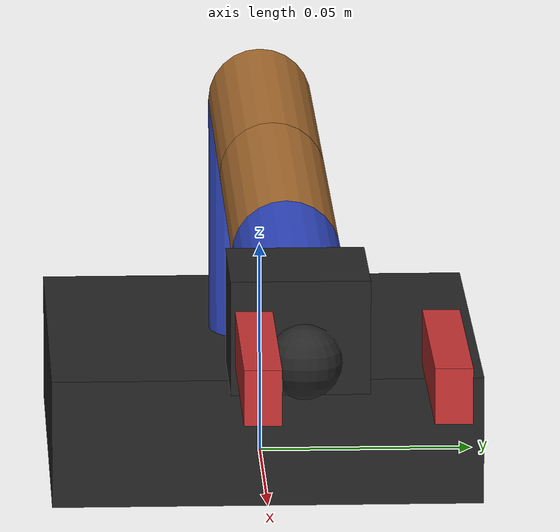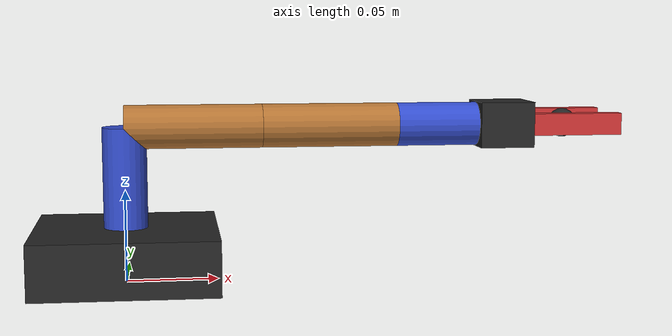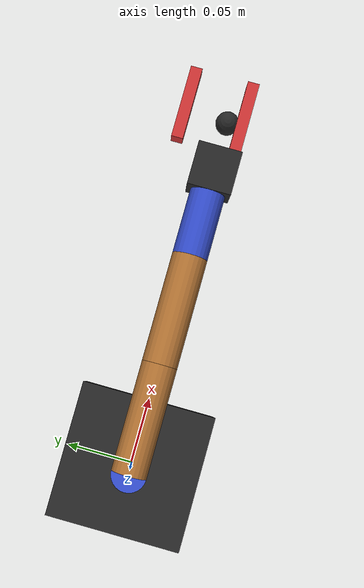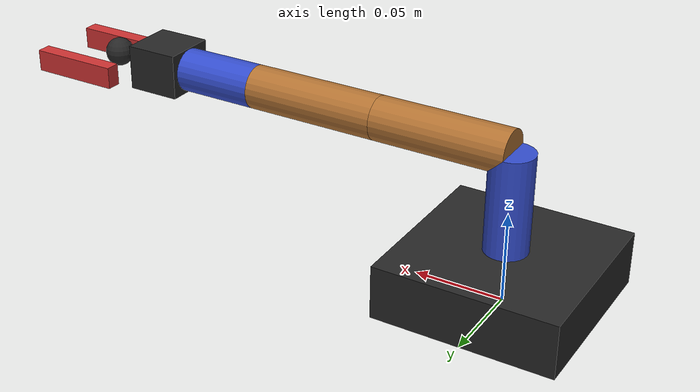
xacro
<?xml version="1.0"?>
<robot xmlns:xacro="http://ros.org/wiki/xacro" name="my_arm">

  <xacro:arg name="ros2_control_params" default=""/>
  <xacro:arg name="hardware_plugin" default="fake_components/GenericSystem"/>
  <xacro:arg name="use_gazebo_plugin" default="false"/>

  <!-- Approximate SG90 wooden arm dimensions -->
  <xacro:arg name="base_z" default="0.030"/>
  <xacro:arg name="base_x" default="0.100"/>
  <xacro:arg name="base_y" default="0.100"/>

  <xacro:arg name="L1" default="0.055"/>  <!-- base to shoulder height -->
  <xacro:arg name="L2" default="0.075"/>  <!-- upper arm -->
  <xacro:arg name="L3" default="0.075"/>  <!-- forearm -->
  <xacro:arg name="L4" default="0.045"/>  <!-- wrist / gripper support -->
  <xacro:arg name="tool_x" default="0.050"/>

  <xacro:arg name="r_link" default="0.012"/>

  <xacro:property name="L1" value="$(arg L1)"/>
  <xacro:property name="L2" value="$(arg L2)"/>
  <xacro:property name="L3" value="$(arg L3)"/>
  <xacro:property name="L4" value="$(arg L4)"/>
  <xacro:property name="r" value="$(arg r_link)"/>

  <material name="dark"><color rgba="0.15 0.15 0.15 1"/></material>
  <material name="wood"><color rgba="0.70 0.45 0.20 1"/></material>
  <material name="blue"><color rgba="0.2 0.3 0.8 1"/></material>
  <material name="red"><color rgba="0.8 0.2 0.2 1"/></material>

  <xacro:macro name="inertial_box" params="mass x y z">
    <inertial>
      <mass value="${mass}"/>
      <inertia ixx="${mass*(y*y+z*z)/12.0}" ixy="0" ixz="0"
               iyy="${mass*(x*x+z*z)/12.0}" iyz="0"
               izz="${mass*(x*x+y*y)/12.0}"/>
    </inertial>
  </xacro:macro>

  <xacro:macro name="inertial_cylinder_x" params="mass radius length">
    <inertial>
      <mass value="${mass}"/>
      <inertia ixx="${mass*radius*radius/2.0}" ixy="0" ixz="0"
               iyy="${mass*(3*radius*radius+length*length)/12.0}" iyz="0"
               izz="${mass*(3*radius*radius+length*length)/12.0}"/>
    </inertial>
  </xacro:macro>

  <link name="world"/>

  <joint name="world_to_base" type="fixed">
    <parent link="world"/>
    <child link="base_link"/>
    <origin xyz="0 0 0" rpy="0 0 0"/>
  </joint>

  <link name="base_link">
    <visual>
      <origin xyz="0 0 ${$(arg base_z)/2.0}" rpy="0 0 0"/>
      <geometry>
        <box size="$(arg base_x) $(arg base_y) $(arg base_z)"/>
      </geometry>
      <material name="dark"/>
    </visual>
    <collision>
      <origin xyz="0 0 ${$(arg base_z)/2.0}" rpy="0 0 0"/>
      <geometry>
        <box size="$(arg base_x) $(arg base_y) $(arg base_z)"/>
      </geometry>
    </collision>
    <xacro:inertial_box mass="0.2" x="$(arg base_x)" y="$(arg base_y)" z="$(arg base_z)"/>
  </link>

  <!-- Vertical base column -->
  <link name="link1">
    <visual>
      <origin xyz="0 0 ${L1/2.0}" rpy="0 0 0"/>
      <geometry>
        <cylinder radius="${r}" length="${L1}"/>
      </geometry>
      <material name="blue"/>
    </visual>
    <collision>
      <origin xyz="0 0 ${L1/2.0}" rpy="0 0 0"/>
      <geometry>
        <cylinder radius="${r}" length="${L1}"/>
      </geometry>
    </collision>
    <xacro:inertial_box mass="0.05" x="0.02" y="0.02" z="${L1}"/>
  </link>

  <!-- Upper arm along +X -->
  <link name="link2">
    <visual>
      <origin xyz="${L2/2.0} 0 0" rpy="0 1.57079632679 0"/>
      <geometry>
        <cylinder radius="${r}" length="${L2}"/>
      </geometry>
      <material name="wood"/>
    </visual>
    <collision>
      <origin xyz="${L2/2.0} 0 0" rpy="0 1.57079632679 0"/>
      <geometry>
        <cylinder radius="${r}" length="${L2}"/>
      </geometry>
    </collision>
    <xacro:inertial_cylinder_x mass="0.05" radius="${r}" length="${L2}"/>
  </link>

  <!-- Forearm along +X -->
  <link name="link3">
    <visual>
      <origin xyz="${L3/2.0} 0 0" rpy="0 1.57079632679 0"/>
      <geometry>
        <cylinder radius="${r}" length="${L3}"/>
      </geometry>
      <material name="wood"/>
    </visual>
    <collision>
      <origin xyz="${L3/2.0} 0 0" rpy="0 1.57079632679 0"/>
      <geometry>
        <cylinder radius="${r}" length="${L3}"/>
      </geometry>
    </collision>
    <xacro:inertial_cylinder_x mass="0.05" radius="${r}" length="${L3}"/>
  </link>

  <!-- Wrist / gripper support along +X -->
  <link name="link4">
    <visual>
      <origin xyz="${L4/2.0} 0 0" rpy="0 1.57079632679 0"/>
      <geometry>
        <cylinder radius="${r}" length="${L4}"/>
      </geometry>
      <material name="blue"/>
    </visual>
    <collision>
      <origin xyz="${L4/2.0} 0 0" rpy="0 1.57079632679 0"/>
      <geometry>
        <cylinder radius="${r}" length="${L4}"/>
      </geometry>
    </collision>
    <xacro:inertial_cylinder_x mass="0.03" radius="${r}" length="${L4}"/>
  </link>

  <!-- Gripper base -->
  <link name="link5">
    <visual>
      <origin xyz="0.015 0 0" rpy="0 0 0"/>
      <geometry>
        <box size="0.030 0.030 0.025"/>
      </geometry>
      <material name="dark"/>
    </visual>
    <collision>
      <origin xyz="0.015 0 0" rpy="0 0 0"/>
      <geometry>
        <box size="0.030 0.030 0.025"/>
      </geometry>
    </collision>
    <xacro:inertial_box mass="0.03" x="0.030" y="0.030" z="0.025"/>
  </link>

  <!-- Moving gripper finger / virtual gripper joint -->
  <link name="link6">
    <visual>
      <origin xyz="0.025 0.020 0" rpy="0 0 0"/>
      <geometry>
        <box size="0.050 0.008 0.012"/>
      </geometry>
      <material name="red"/>
    </visual>
    <collision>
      <origin xyz="0.025 0.020 0" rpy="0 0 0"/>
      <geometry>
        <box size="0.050 0.008 0.012"/>
      </geometry>
    </collision>
    <xacro:inertial_box mass="0.01" x="0.050" y="0.008" z="0.012"/>
  </link>

  <link name="link6_right">
    <visual>
        <origin xyz="0.025 0 0" rpy="0 0 0"/>
        <geometry>
        <box size="0.050 0.008 0.012"/>
        </geometry>
        <material name="red"/>
    </visual>
    <collision>
        <origin xyz="0.025 0 0" rpy="0 0 0"/>
        <geometry>
        <box size="0.050 0.008 0.012"/>
        </geometry>
    </collision>
    <xacro:inertial_box mass="0.01" x="0.050" y="0.008" z="0.012"/>
  </link>

  <!-- Tool frame -->
  <link name="tool">
    <visual>
      <origin xyz="0 0 0" rpy="0 0 0"/>
      <geometry>
        <sphere radius="0.008"/>
      </geometry>
      <material name="dark"/>
    </visual>
    <collision>
        <geometry>
            <sphere radius="0.008"/>
        </geometry>
    </collision>
  </link>

  <!-- =========================
       Joints
       ========================= -->

  <!-- joint1: base yaw -->
  <joint name="joint1" type="revolute">
    <parent link="base_link"/>
    <child link="link1"/>
    <origin xyz="0 0 $(arg base_z)" rpy="0 0 0"/>
    <axis xyz="0 0 1"/>
    <limit lower="-1.5708" upper="1.5708" effort="1.0" velocity="1.0"/>
  </joint>

  <!-- joint2: shoulder pitch. No PUMA lateral offset d3 -->
  <joint name="joint2" type="revolute">
    <parent link="link1"/>
    <child link="link2"/>
    <origin xyz="0 0 ${L1}" rpy="0 0 0"/>
    <axis xyz="0 1 0"/>
    <limit lower="-1.5708" upper="1.5708" effort="1.0" velocity="1.0"/>
  </joint>

  <!-- joint3: elbow pitch -->
  <joint name="joint3" type="revolute">
    <parent link="link2"/>
    <child link="link3"/>
    <origin xyz="${L2} 0 0" rpy="0 0 0"/>
    <axis xyz="0 1 0"/>
    <limit lower="-1.5708" upper="1.5708" effort="1.0" velocity="1.0"/>
  </joint>

  <!-- joint4: wrist pitch, different from PUMA wrist roll -->
  <joint name="joint4" type="revolute">
    <parent link="link3"/>
    <child link="link4"/>
    <origin xyz="${L3} 0 0" rpy="0 0 0"/>
    <axis xyz="0 1 0"/>
    <limit lower="-1.5708" upper="1.5708" effort="1.0" velocity="1.0"/>
  </joint>

  <!-- joint5: wrist / gripper orientation roll -->
  <joint name="joint5" type="revolute">
    <parent link="link4"/>
    <child link="link5"/>
    <origin xyz="${L4} 0 0" rpy="0 0 0"/>
    <axis xyz="1 0 0"/>
    <limit lower="-1.5708" upper="1.5708" effort="1.0" velocity="1.0"/>
  </joint>

  <!-- joint6: gripper open-close, kept revolute to match SG90 servo command -->
  <joint name="joint6" type="prismatic">
    <parent link="link5"/>
    <child link="link6"/>
    <origin xyz="0.030 0.010 0" rpy="0 0 0"/>
    <axis xyz="0 1 0"/>
    <limit lower="0.0" upper="0.015" effort="1.0" velocity="0.05"/>
  </joint>
  <joint name="joint6_right" type="fixed">
    <parent link="link5"/>
    <child link="link6_right"/>
    <origin xyz="0.030 -0.010 0" rpy="0 0 0"/>
  </joint>

  <joint name="link5_to_tool" type="fixed">
    <parent link="link5"/>
    <child link="tool"/>
    <origin xyz="$(arg tool_x) 0 0" rpy="0 0 0"/>
  </joint>

  <!-- =========================
       ros2_control
       ========================= -->

  <ros2_control name="MyArmMecanumSystem" type="system">
    <hardware>
      <plugin>$(arg hardware_plugin)</plugin>
    </hardware>

    <joint name="joint1">
      <command_interface name="position"/>
      <state_interface name="position"/>
      <state_interface name="velocity"/>
    </joint>

    <joint name="joint2">
      <command_interface name="position"/>
      <state_interface name="position"/>
      <state_interface name="velocity"/>
    </joint>

    <joint name="joint3">
      <command_interface name="position"/>
      <state_interface name="position"/>
      <state_interface name="velocity"/>
    </joint>

    <joint name="joint4">
      <command_interface name="position"/>
      <state_interface name="position"/>
      <state_interface name="velocity"/>
    </joint>

    <joint name="joint5">
      <command_interface name="position"/>
      <state_interface name="position"/>
      <state_interface name="velocity"/>
    </joint>

    <joint name="joint6">
      <command_interface name="position"/>
      <state_interface name="position"/>
      <state_interface name="velocity"/>
    </joint>
  </ros2_control>

  <xacro:if value="$(arg use_gazebo_plugin)">
    <gazebo>
        <plugin name="gz_ros2_control::GazeboSimROS2ControlPlugin"
                filename="gz_ros2_control-system">
        <parameters>$(arg ros2_control_params)</parameters>
        </plugin>
    </gazebo>
  </xacro:if>

</robot>
